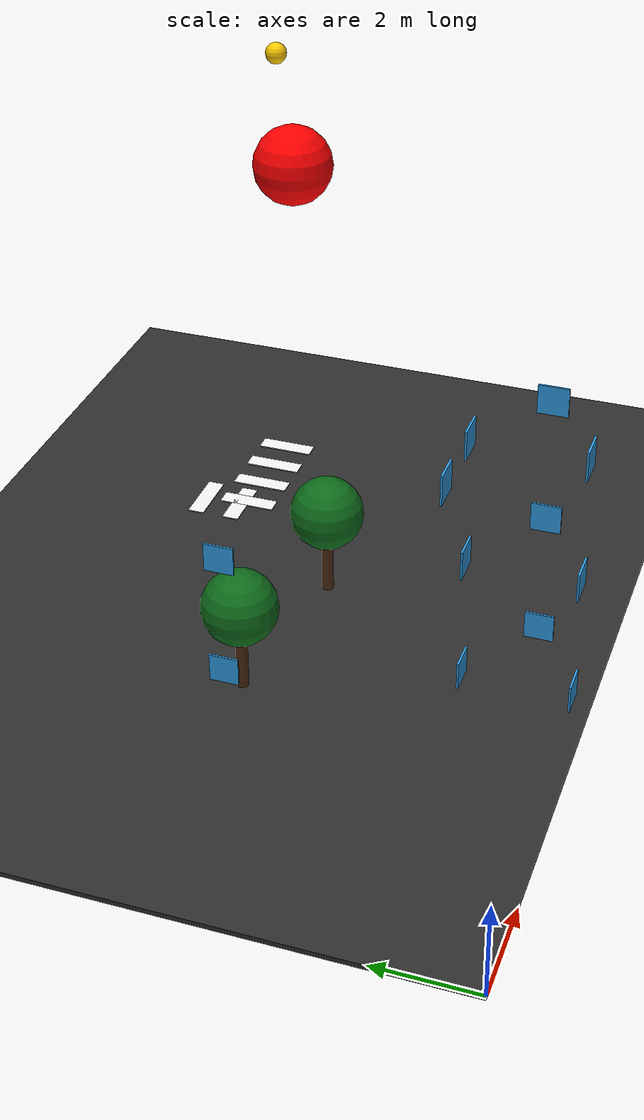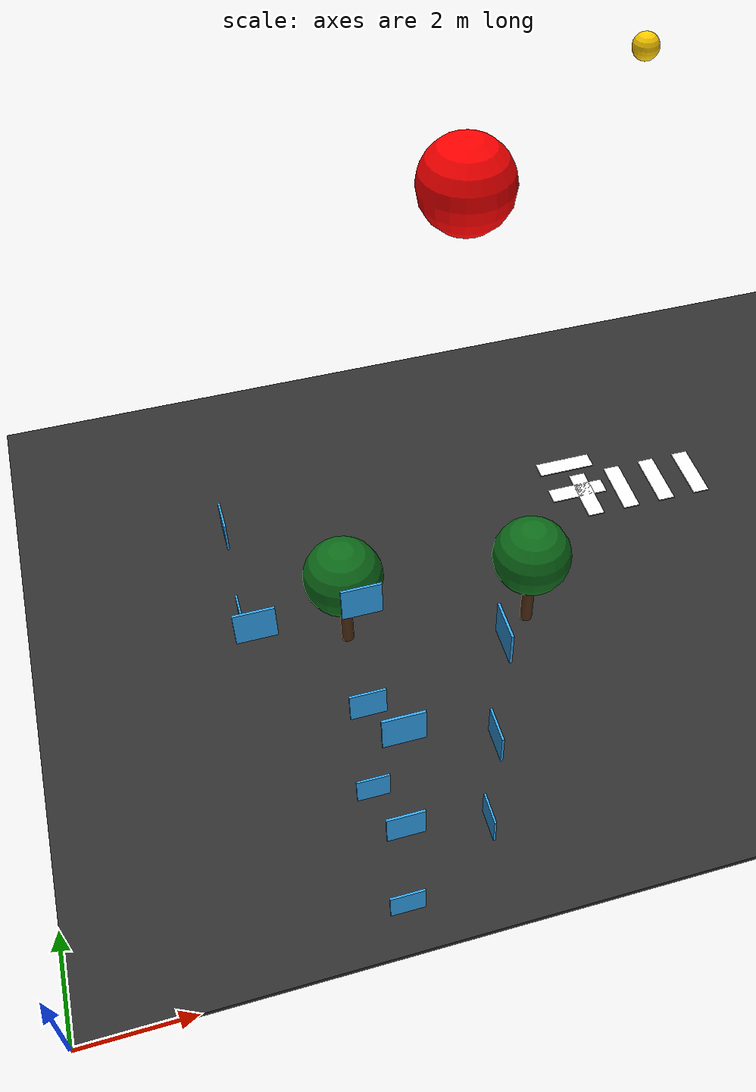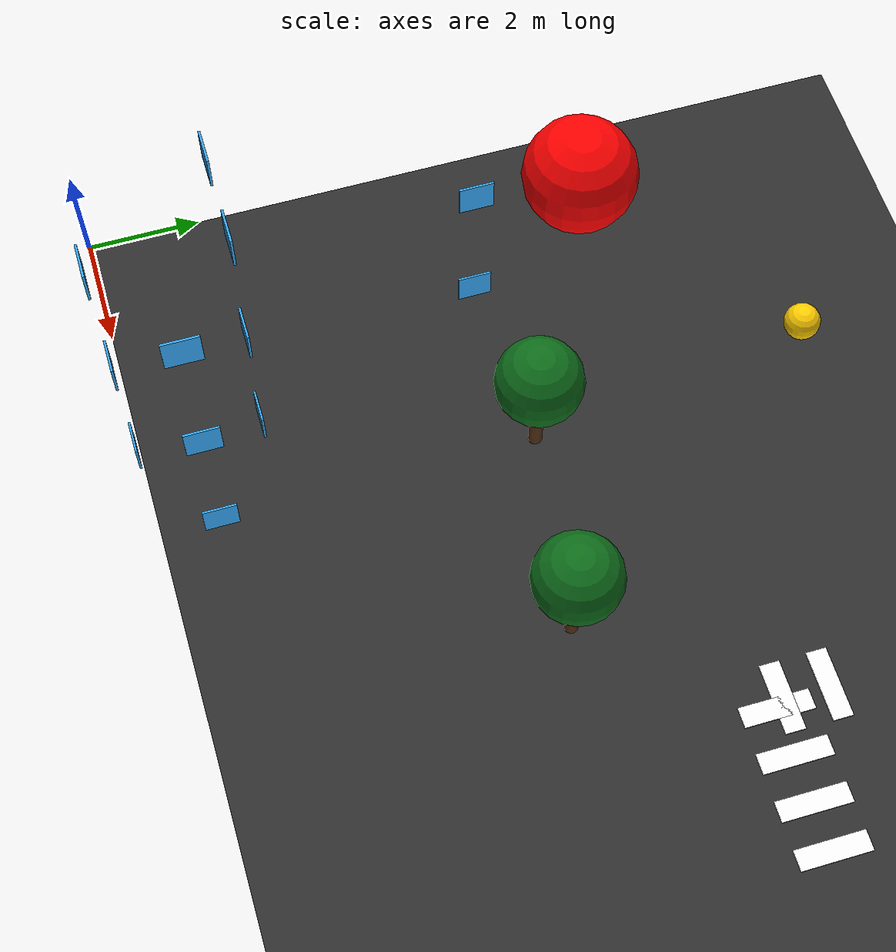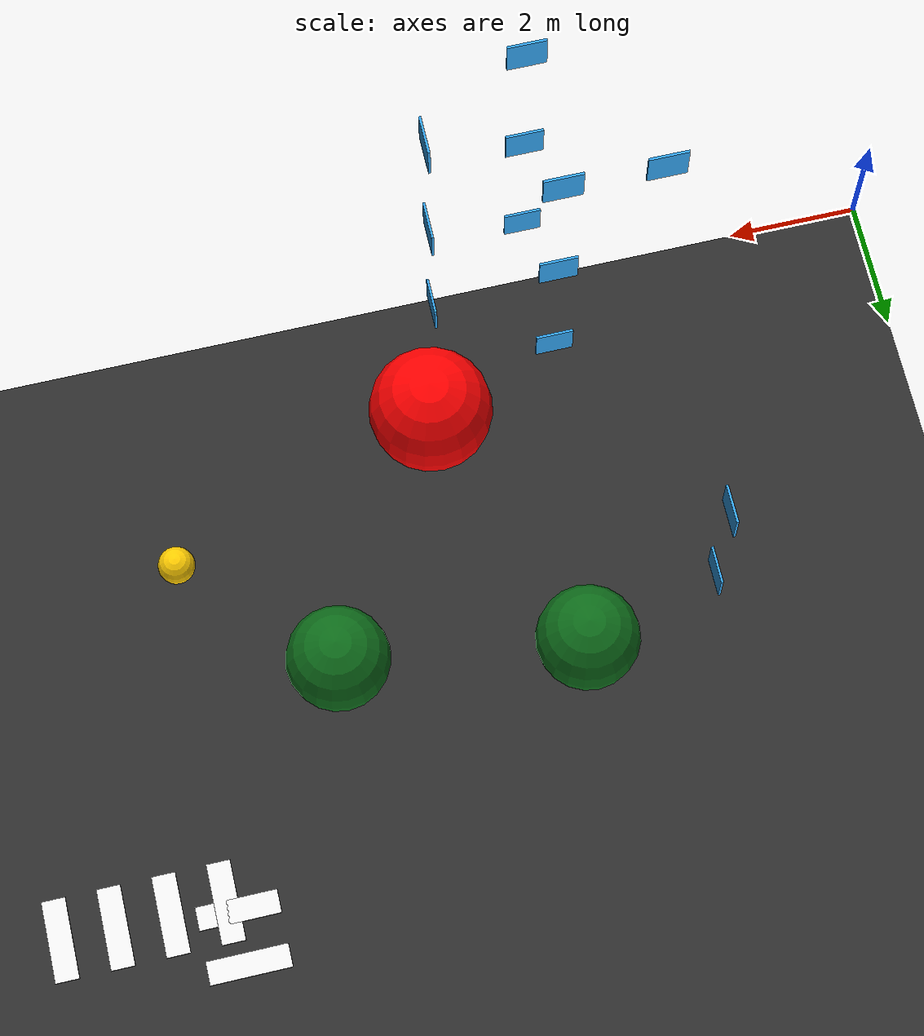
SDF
<sdf version="1.10">
 <world name="city_uav_demo">
  <model name="ground_plane">
   <static>true</static>
   <pose>20.0000 20.0000 -0.0500 0 0 0.0000</pose>
   <link name="link">
    <collision name="collision"><geometry><box><size>40.0000 40.0000 0.1000</size></box></geometry></collision>
    <visual name="visual">
     <geometry><box><size>40.0000 40.0000 0.1000</size></box></geometry>
     <material><ambient>0.18 0.18 0.18 1.0</ambient><diffuse>0.18 0.18 0.18 1.0</diffuse></material>
    </visual>
   </link>
  </model>
  <model name="crosswalk_0_h_0">
   <static>true</static>
   <pose>11.8000 8.6500 0.1200 0 0 0.0000</pose>
   <link name="link">
    <visual name="visual">
     <geometry><box><size>0.3500 1.2000 0.0250</size></box></geometry>
     <material><ambient>0.95 0.95 0.95 1.0</ambient><diffuse>0.95 0.95 0.95 1.0</diffuse></material>
    </visual>
   </link>
  </model>
  <model name="crosswalk_0_v_0">
   <static>true</static>
   <pose>11.6500 8.8000 0.1200 0 0 0.0000</pose>
   <link name="link">
    <visual name="visual">
     <geometry><box><size>1.2000 0.3500 0.0250</size></box></geometry>
     <material><ambient>0.95 0.95 0.95 1.0</ambient><diffuse>0.95 0.95 0.95 1.0</diffuse></material>
    </visual>
   </link>
  </model>
  <model name="crosswalk_0_h_1">
   <static>true</static>
   <pose>12.6000 8.6500 0.1200 0 0 0.0000</pose>
   <link name="link">
    <visual name="visual">
     <geometry><box><size>0.3500 1.2000 0.0250</size></box></geometry>
     <material><ambient>0.95 0.95 0.95 1.0</ambient><diffuse>0.95 0.95 0.95 1.0</diffuse></material>
    </visual>
   </link>
  </model>
  <model name="crosswalk_0_v_1">
   <static>true</static>
   <pose>11.6500 9.6000 0.1200 0 0 0.0000</pose>
   <link name="link">
    <visual name="visual">
     <geometry><box><size>1.2000 0.3500 0.0250</size></box></geometry>
     <material><ambient>0.95 0.95 0.95 1.0</ambient><diffuse>0.95 0.95 0.95 1.0</diffuse></material>
    </visual>
   </link>
  </model>
  <model name="crosswalk_0_h_2">
   <static>true</static>
   <pose>13.4000 8.6500 0.1200 0 0 0.0000</pose>
   <link name="link">
    <visual name="visual">
     <geometry><box><size>0.3500 1.2000 0.0250</size></box></geometry>
     <material><ambient>0.95 0.95 0.95 1.0</ambient><diffuse>0.95 0.95 0.95 1.0</diffuse></material>
    </visual>
   </link>
  </model>
  <model name="crosswalk_0_h_3">
   <static>true</static>
   <pose>14.2000 8.6500 0.1200 0 0 0.0000</pose>
   <link name="link">
    <visual name="visual">
     <geometry><box><size>0.3500 1.2000 0.0250</size></box></geometry>
     <material><ambient>0.95 0.95 0.95 1.0</ambient><diffuse>0.95 0.95 0.95 1.0</diffuse></material>
    </visual>
   </link>
  </model>
  <model name="building_16_window_right_0">
   <static>true</static>
   <pose>4.0120 6.0000 2.0000 0 0 0.0000</pose>
   <link name="link">
    <visual name="visual">
     <geometry><box><size>0.0350 0.5500 0.5500</size></box></geometry>
     <material><ambient>0.20 0.65 0.95 1.0</ambient><diffuse>0.20 0.65 0.95 1.0</diffuse></material>
    </visual>
   </link>
  </model>
  <model name="building_16_window_right_1">
   <static>true</static>
   <pose>4.0120 6.0000 4.4000 0 0 0.0000</pose>
   <link name="link">
    <visual name="visual">
     <geometry><box><size>0.0350 0.5500 0.5500</size></box></geometry>
     <material><ambient>0.20 0.65 0.95 1.0</ambient><diffuse>0.20 0.65 0.95 1.0</diffuse></material>
    </visual>
   </link>
  </model>
  <model name="building_18_window_front_2">
   <static>true</static>
   <pose>5.4000 -0.0120 2.0000 0 0 0.0000</pose>
   <link name="link">
    <visual name="visual">
     <geometry><box><size>0.5500 0.0350 0.5500</size></box></geometry>
     <material><ambient>0.20 0.65 0.95 1.0</ambient><diffuse>0.20 0.65 0.95 1.0</diffuse></material>
    </visual>
   </link>
  </model>
  <model name="building_18_window_front_5">
   <static>true</static>
   <pose>5.4000 -0.0120 4.4000 0 0 0.0000</pose>
   <link name="link">
    <visual name="visual">
     <geometry><box><size>0.5500 0.0350 0.5500</size></box></geometry>
     <material><ambient>0.20 0.65 0.95 1.0</ambient><diffuse>0.20 0.65 0.95 1.0</diffuse></material>
    </visual>
   </link>
  </model>
  <model name="building_18_window_front_8">
   <static>true</static>
   <pose>5.4000 -0.0120 6.8000 0 0 0.0000</pose>
   <link name="link">
    <visual name="visual">
     <geometry><box><size>0.5500 0.0350 0.5500</size></box></geometry>
     <material><ambient>0.20 0.65 0.95 1.0</ambient><diffuse>0.20 0.65 0.95 1.0</diffuse></material>
    </visual>
   </link>
  </model>
  <model name="building_18_window_back_2">
   <static>true</static>
   <pose>5.4000 2.0120 2.0000 0 0 0.0000</pose>
   <link name="link">
    <visual name="visual">
     <geometry><box><size>0.5500 0.0350 0.5500</size></box></geometry>
     <material><ambient>0.20 0.65 0.95 1.0</ambient><diffuse>0.20 0.65 0.95 1.0</diffuse></material>
    </visual>
   </link>
  </model>
  <model name="building_18_window_back_5">
   <static>true</static>
   <pose>5.4000 2.0120 4.4000 0 0 0.0000</pose>
   <link name="link">
    <visual name="visual">
     <geometry><box><size>0.5500 0.0350 0.5500</size></box></geometry>
     <material><ambient>0.20 0.65 0.95 1.0</ambient><diffuse>0.20 0.65 0.95 1.0</diffuse></material>
    </visual>
   </link>
  </model>
  <model name="building_18_window_back_7">
   <static>true</static>
   <pose>4.0000 2.0120 6.8000 0 0 0.0000</pose>
   <link name="link">
    <visual name="visual">
     <geometry><box><size>0.5500 0.0350 0.5500</size></box></geometry>
     <material><ambient>0.20 0.65 0.95 1.0</ambient><diffuse>0.20 0.65 0.95 1.0</diffuse></material>
    </visual>
   </link>
  </model>
  <model name="building_18_window_back_8">
   <static>true</static>
   <pose>5.4000 2.0120 6.8000 0 0 0.0000</pose>
   <link name="link">
    <visual name="visual">
     <geometry><box><size>0.5500 0.0350 0.5500</size></box></geometry>
     <material><ambient>0.20 0.65 0.95 1.0</ambient><diffuse>0.20 0.65 0.95 1.0</diffuse></material>
    </visual>
   </link>
  </model>
  <model name="building_18_window_right_0">
   <static>true</static>
   <pose>7.0120 1.0000 2.0000 0 0 0.0000</pose>
   <link name="link">
    <visual name="visual">
     <geometry><box><size>0.0350 0.5500 0.5500</size></box></geometry>
     <material><ambient>0.20 0.65 0.95 1.0</ambient><diffuse>0.20 0.65 0.95 1.0</diffuse></material>
    </visual>
   </link>
  </model>
  <model name="building_18_window_right_1">
   <static>true</static>
   <pose>7.0120 1.0000 4.4000 0 0 0.0000</pose>
   <link name="link">
    <visual name="visual">
     <geometry><box><size>0.0350 0.5500 0.5500</size></box></geometry>
     <material><ambient>0.20 0.65 0.95 1.0</ambient><diffuse>0.20 0.65 0.95 1.0</diffuse></material>
    </visual>
   </link>
  </model>
  <model name="building_18_window_right_2">
   <static>true</static>
   <pose>7.0120 1.0000 6.8000 0 0 0.0000</pose>
   <link name="link">
    <visual name="visual">
     <geometry><box><size>0.0350 0.5500 0.5500</size></box></geometry>
     <material><ambient>0.20 0.65 0.95 1.0</ambient><diffuse>0.20 0.65 0.95 1.0</diffuse></material>
    </visual>
   </link>
  </model>
  <model name="tree_9_trunk">
   <static>true</static>
   <pose>6.0000 6.5000 0.7500 0.0000 0.0000 0.0000</pose>
   <link name="link">
    <visual name="visual">
     <geometry><cylinder><radius>0.1200</radius><length>1.5000</length></cylinder></geometry>
     <material><ambient>0.32 0.18 0.08 1.0</ambient><diffuse>0.32 0.18 0.08 1.0</diffuse></material>
    </visual>
   </link>
  </model>
  <model name="tree_9_crown">
   <static>true</static>
   <pose>6.0000 6.5000 1.8500 0 0 0</pose>
   <link name="link">
    <visual name="visual">
     <geometry><sphere><radius>0.7500</radius></sphere></geometry>
     <material><ambient>0.05 0.42 0.10 1.0</ambient><diffuse>0.05 0.42 0.10 1.0</diffuse></material>
    </visual>
   </link>
  </model>
  <model name="tree_18_trunk">
   <static>true</static>
   <pose>9.5000 6.0000 0.7500 0.0000 0.0000 0.0000</pose>
   <link name="link">
    <visual name="visual">
     <geometry><cylinder><radius>0.1200</radius><length>1.5000</length></cylinder></geometry>
     <material><ambient>0.32 0.18 0.08 1.0</ambient><diffuse>0.32 0.18 0.08 1.0</diffuse></material>
    </visual>
   </link>
  </model>
  <model name="tree_18_crown">
   <static>true</static>
   <pose>9.5000 6.0000 1.8500 0 0 0</pose>
   <link name="link">
    <visual name="visual">
     <geometry><sphere><radius>0.7500</radius></sphere></geometry>
     <material><ambient>0.05 0.42 0.10 1.0</ambient><diffuse>0.05 0.42 0.10 1.0</diffuse></material>
    </visual>
   </link>
  </model>
  <model name="goal">
   <static>true</static>
   <pose>8.0000 6.0000 10.0000 0 0 0</pose>
   <link name="link">
    <visual name="visual">
     <geometry><sphere><radius>0.7000</radius></sphere></geometry>
     <material><ambient>1.0 0.0 0.0 1.0</ambient><diffuse>1.0 0.0 0.0 1.0</diffuse></material>
    </visual>
   </link>
  </model>
  <model name="uav_1_path_4">
   <static>true</static>
   <pose>8.0000 6.0000 10.0000 0 0 0</pose>
   <link name="link">
    <visual name="visual">
     <geometry><sphere><radius>0.2000</radius></sphere></geometry>
     <material><ambient>1.0 0.45 0.0 1.0</ambient><diffuse>1.0 0.45 0.0 1.0</diffuse></material>
    </visual>
   </link>
  </model>
  <model name="uav_2_path_2">
   <static>true</static>
   <pose>8.0000 6.0000 10.0000 0 0 0</pose>
   <link name="link">
    <visual name="visual">
     <geometry><sphere><radius>0.2000</radius></sphere></geometry>
     <material><ambient>0.0 0.65 1.0 1.0</ambient><diffuse>0.0 0.65 1.0 1.0</diffuse></material>
    </visual>
   </link>
  </model>
  <model name="uav_3_path_2">
   <static>true</static>
   <pose>11.0874 7.4591 10.7550 0 0 0</pose>
   <link name="link">
    <visual name="visual">
     <geometry><sphere><radius>0.2000</radius></sphere></geometry>
     <material><ambient>1.0 0.8 0.0 1.0</ambient><diffuse>1.0 0.8 0.0 1.0</diffuse></material>
    </visual>
   </link>
  </model>
  <model name="uav_3_path_3">
   <static>true</static>
   <pose>8.0000 6.0000 10.0000 0 0 0</pose>
   <link name="link">
    <visual name="visual">
     <geometry><sphere><radius>0.2000</radius></sphere></geometry>
     <material><ambient>1.0 0.8 0.0 1.0</ambient><diffuse>1.0 0.8 0.0 1.0</diffuse></material>
    </visual>
   </link>
  </model>
  <model name="uav_4_path_7">
   <static>true</static>
   <pose>8.0000 6.0000 10.0000 0 0 0</pose>
   <link name="link">
    <visual name="visual">
     <geometry><sphere><radius>0.2000</radius></sphere></geometry>
     <material><ambient>1.0 0.2 0.2 1.0</ambient><diffuse>1.0 0.2 0.2 1.0</diffuse></material>
    </visual>
   </link>
  </model>
  <model name="uav_5_path_2">
   <static>true</static>
   <pose>8.0000 6.0000 10.0000 0 0 0</pose>
   <link name="link">
    <visual name="visual">
     <geometry><sphere><radius>0.2000</radius></sphere></geometry>
     <material><ambient>0.8 0.2 1.0 1.0</ambient><diffuse>0.8 0.2 1.0 1.0</diffuse></material>
    </visual>
   </link>
  </model>
 </world>
</sdf>
